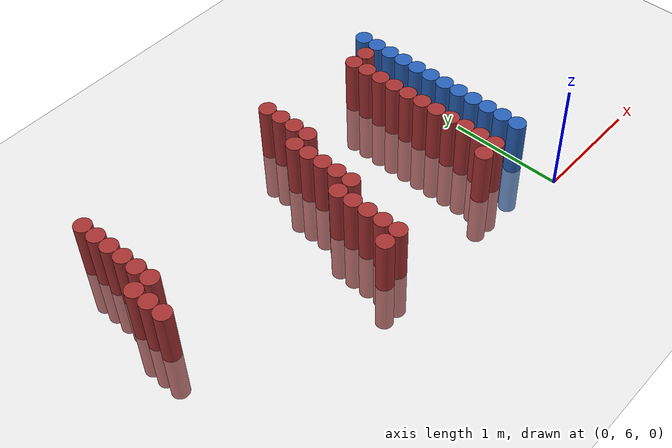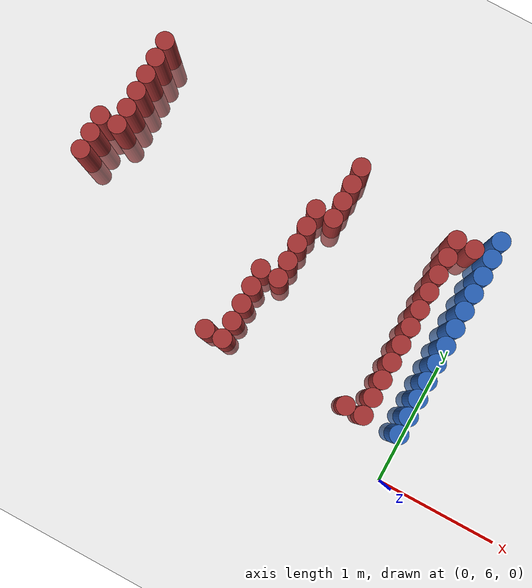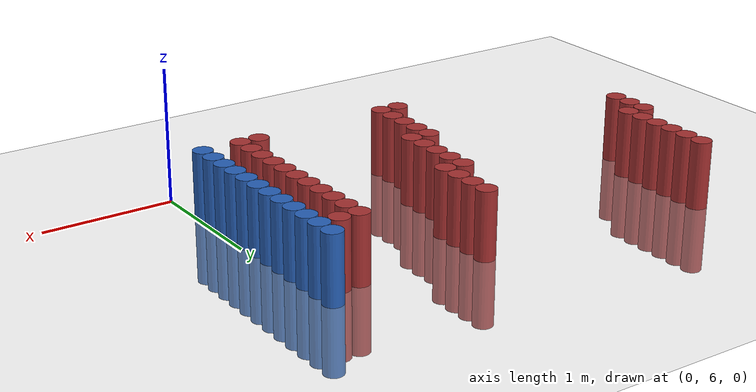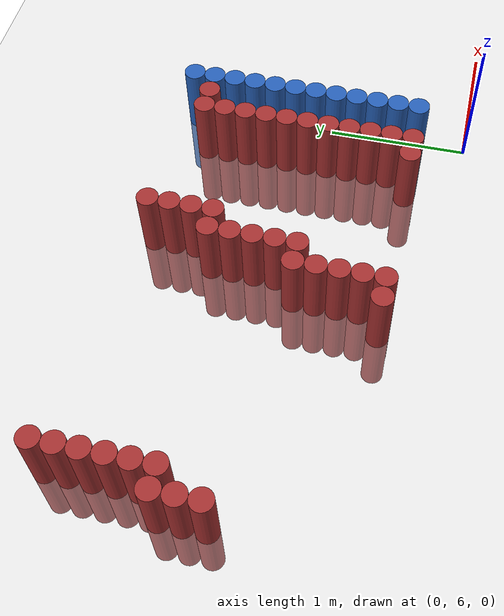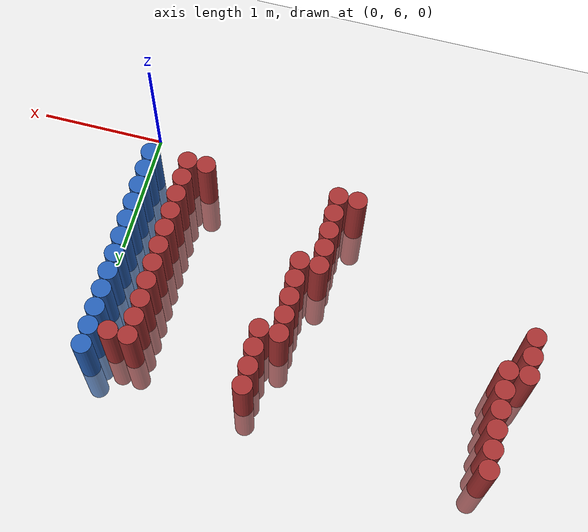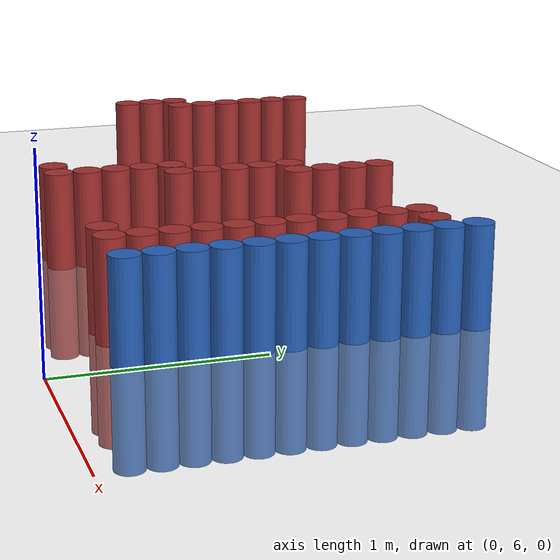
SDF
<sdf version="1.6">
 <world name="default">
  <model name="ground_plane">
   <static>1</static>
   <link name="link">
    <collision name="collision">
     <geometry><plane><normal>0 0 1</normal><size>100 100</size></plane></geometry>
     <surface><friction><ode><mu>100</mu><mu2>50</mu2></ode></friction></surface>
    </collision>
    <visual name="visual">
     <cast_shadows>0</cast_shadows>
     <geometry><plane><normal>0 0 1</normal><size>100 100</size></plane></geometry>
     <material>
      <script><uri>file://media/materials/scripts/gazebo.material</uri><name>Gazebo/Grey</name></script>
     </material>
    </visual>
   </link>
  </model>
  <model name="unit_cylinder_165">
   <static>1</static>
   <pose>-3.225000 7.125000 0.000000 0.000000 0.000000 0.000000</pose>
   <link name="link">
    <inertial>
     <mass>1</mass>
     <inertia><ixx>0.145833</ixx><ixy>0</ixy><ixz>0</ixz><iyy>0.145833</iyy><iyz>0</iyz><izz>0.125</izz></inertia>
    </inertial>
    <collision name="collision">
     <geometry><cylinder><radius>0.075000</radius><length>1</length></cylinder></geometry>
    </collision>
    <visual name="visual">
     <geometry><cylinder><radius>0.075000</radius><length>1</length></cylinder></geometry>
     <material>
      <ambient>0.648000 0.192000 0.192000 1</ambient>
      <diffuse>0.648000 0.192000 0.192000 1</diffuse>
     </material>
     <material>
      <script><name>Gazebo/Grey</name><uri>file://media/materials/scripts/gazebo.material</uri></script>
     </material>
    </visual>
   </link>
  </model>
  <model name="unit_cylinder_166">
   <static>1</static>
   <pose>-3.225000 7.275000 0.000000 0.000000 0.000000 0.000000</pose>
   <link name="link">
    <inertial>
     <mass>1</mass>
     <inertia><ixx>0.145833</ixx><ixy>0</ixy><ixz>0</ixz><iyy>0.145833</iyy><iyz>0</iyz><izz>0.125</izz></inertia>
    </inertial>
    <collision name="collision">
     <geometry><cylinder><radius>0.075000</radius><length>1</length></cylinder></geometry>
    </collision>
    <visual name="visual">
     <geometry><cylinder><radius>0.075000</radius><length>1</length></cylinder></geometry>
     <material>
      <ambient>0.648000 0.192000 0.192000 1</ambient>
      <diffuse>0.648000 0.192000 0.192000 1</diffuse>
     </material>
     <material>
      <script><name>Gazebo/Grey</name><uri>file://media/materials/scripts/gazebo.material</uri></script>
     </material>
    </visual>
   </link>
  </model>
  <model name="unit_cylinder_167">
   <static>1</static>
   <pose>-3.225000 7.425000 0.000000 0.000000 0.000000 0.000000</pose>
   <link name="link">
    <inertial>
     <mass>1</mass>
     <inertia><ixx>0.145833</ixx><ixy>0</ixy><ixz>0</ixz><iyy>0.145833</iyy><iyz>0</iyz><izz>0.125</izz></inertia>
    </inertial>
    <collision name="collision">
     <geometry><cylinder><radius>0.075000</radius><length>1</length></cylinder></geometry>
    </collision>
    <visual name="visual">
     <geometry><cylinder><radius>0.075000</radius><length>1</length></cylinder></geometry>
     <material>
      <ambient>0.648000 0.192000 0.192000 1</ambient>
      <diffuse>0.648000 0.192000 0.192000 1</diffuse>
     </material>
     <material>
      <script><name>Gazebo/Grey</name><uri>file://media/materials/scripts/gazebo.material</uri></script>
     </material>
    </visual>
   </link>
  </model>
  <model name="unit_cylinder_169">
   <static>1</static>
   <pose>-3.075000 7.425000 0.000000 0.000000 0.000000 0.000000</pose>
   <link name="link">
    <inertial>
     <mass>1</mass>
     <inertia><ixx>0.145833</ixx><ixy>0</ixy><ixz>0</ixz><iyy>0.145833</iyy><iyz>0</iyz><izz>0.125</izz></inertia>
    </inertial>
    <collision name="collision">
     <geometry><cylinder><radius>0.075000</radius><length>1</length></cylinder></geometry>
    </collision>
    <visual name="visual">
     <geometry><cylinder><radius>0.075000</radius><length>1</length></cylinder></geometry>
     <material>
      <ambient>0.648000 0.192000 0.192000 1</ambient>
      <diffuse>0.648000 0.192000 0.192000 1</diffuse>
     </material>
     <material>
      <script><name>Gazebo/Grey</name><uri>file://media/materials/scripts/gazebo.material</uri></script>
     </material>
    </visual>
   </link>
  </model>
  <model name="unit_cylinder_170">
   <static>1</static>
   <pose>-3.075000 7.575000 0.000000 0.000000 0.000000 0.000000</pose>
   <link name="link">
    <inertial>
     <mass>1</mass>
     <inertia><ixx>0.145833</ixx><ixy>0</ixy><ixz>0</ixz><iyy>0.145833</iyy><iyz>0</iyz><izz>0.125</izz></inertia>
    </inertial>
    <collision name="collision">
     <geometry><cylinder><radius>0.075000</radius><length>1</length></cylinder></geometry>
    </collision>
    <visual name="visual">
     <geometry><cylinder><radius>0.075000</radius><length>1</length></cylinder></geometry>
     <material>
      <ambient>0.648000 0.192000 0.192000 1</ambient>
      <diffuse>0.648000 0.192000 0.192000 1</diffuse>
     </material>
     <material>
      <script><name>Gazebo/Grey</name><uri>file://media/materials/scripts/gazebo.material</uri></script>
     </material>
    </visual>
   </link>
  </model>
  <model name="unit_cylinder_171">
   <static>1</static>
   <pose>-3.075000 7.725000 0.000000 0.000000 0.000000 0.000000</pose>
   <link name="link">
    <inertial>
     <mass>1</mass>
     <inertia><ixx>0.145833</ixx><ixy>0</ixy><ixz>0</ixz><iyy>0.145833</iyy><iyz>0</iyz><izz>0.125</izz></inertia>
    </inertial>
    <collision name="collision">
     <geometry><cylinder><radius>0.075000</radius><length>1</length></cylinder></geometry>
    </collision>
    <visual name="visual">
     <geometry><cylinder><radius>0.075000</radius><length>1</length></cylinder></geometry>
     <material>
      <ambient>0.648000 0.192000 0.192000 1</ambient>
      <diffuse>0.648000 0.192000 0.192000 1</diffuse>
     </material>
     <material>
      <script><name>Gazebo/Grey</name><uri>file://media/materials/scripts/gazebo.material</uri></script>
     </material>
    </visual>
   </link>
  </model>
  <model name="unit_cylinder_172">
   <static>1</static>
   <pose>-3.075000 7.875000 0.000000 0.000000 0.000000 0.000000</pose>
   <link name="link">
    <inertial>
     <mass>1</mass>
     <inertia><ixx>0.145833</ixx><ixy>0</ixy><ixz>0</ixz><iyy>0.145833</iyy><iyz>0</iyz><izz>0.125</izz></inertia>
    </inertial>
    <collision name="collision">
     <geometry><cylinder><radius>0.075000</radius><length>1</length></cylinder></geometry>
    </collision>
    <visual name="visual">
     <geometry><cylinder><radius>0.075000</radius><length>1</length></cylinder></geometry>
     <material>
      <ambient>0.648000 0.192000 0.192000 1</ambient>
      <diffuse>0.648000 0.192000 0.192000 1</diffuse>
     </material>
     <material>
      <script><name>Gazebo/Grey</name><uri>file://media/materials/scripts/gazebo.material</uri></script>
     </material>
    </visual>
   </link>
  </model>
  <model name="unit_cylinder_173">
   <static>1</static>
   <pose>-3.075000 8.025000 0.000000 0.000000 0.000000 0.000000</pose>
   <link name="link">
    <inertial>
     <mass>1</mass>
     <inertia><ixx>0.145833</ixx><ixy>0</ixy><ixz>0</ixz><iyy>0.145833</iyy><iyz>0</iyz><izz>0.125</izz></inertia>
    </inertial>
    <collision name="collision">
     <geometry><cylinder><radius>0.075000</radius><length>1</length></cylinder></geometry>
    </collision>
    <visual name="visual">
     <geometry><cylinder><radius>0.075000</radius><length>1</length></cylinder></geometry>
     <material>
      <ambient>0.648000 0.192000 0.192000 1</ambient>
      <diffuse>0.648000 0.192000 0.192000 1</diffuse>
     </material>
     <material>
      <script><name>Gazebo/Grey</name><uri>file://media/materials/scripts/gazebo.material</uri></script>
     </material>
    </visual>
   </link>
  </model>
  <model name="unit_cylinder_174">
   <static>1</static>
   <pose>-3.075000 8.175000 0.000000 0.000000 0.000000 0.000000</pose>
   <link name="link">
    <inertial>
     <mass>1</mass>
     <inertia><ixx>0.145833</ixx><ixy>0</ixy><ixz>0</ixz><iyy>0.145833</iyy><iyz>0</iyz><izz>0.125</izz></inertia>
    </inertial>
    <collision name="collision">
     <geometry><cylinder><radius>0.075000</radius><length>1</length></cylinder></geometry>
    </collision>
    <visual name="visual">
     <geometry><cylinder><radius>0.075000</radius><length>1</length></cylinder></geometry>
     <material>
      <ambient>0.648000 0.192000 0.192000 1</ambient>
      <diffuse>0.648000 0.192000 0.192000 1</diffuse>
     </material>
     <material>
      <script><name>Gazebo/Grey</name><uri>file://media/materials/scripts/gazebo.material</uri></script>
     </material>
    </visual>
   </link>
  </model>
  <model name="unit_cylinder_199">
   <static>1</static>
   <pose>-1.725000 6.375000 0.000000 0.000000 0.000000 0.000000</pose>
   <link name="link">
    <inertial>
     <mass>1</mass>
     <inertia><ixx>0.145833</ixx><ixy>0</ixy><ixz>0</ixz><iyy>0.145833</iyy><iyz>0</iyz><izz>0.125</izz></inertia>
    </inertial>
    <collision name="collision">
     <geometry><cylinder><radius>0.075000</radius><length>1</length></cylinder></geometry>
    </collision>
    <visual name="visual">
     <geometry><cylinder><radius>0.075000</radius><length>1</length></cylinder></geometry>
     <material>
      <ambient>0.648000 0.192000 0.192000 1</ambient>
      <diffuse>0.648000 0.192000 0.192000 1</diffuse>
     </material>
     <material>
      <script><name>Gazebo/Grey</name><uri>file://media/materials/scripts/gazebo.material</uri></script>
     </material>
    </visual>
   </link>
  </model>
  <model name="unit_cylinder_206">
   <static>1</static>
   <pose>-1.575000 6.375000 0.000000 0.000000 0.000000 0.000000</pose>
   <link name="link">
    <inertial>
     <mass>1</mass>
     <inertia><ixx>0.145833</ixx><ixy>0</ixy><ixz>0</ixz><iyy>0.145833</iyy><iyz>0</iyz><izz>0.125</izz></inertia>
    </inertial>
    <collision name="collision">
     <geometry><cylinder><radius>0.075000</radius><length>1</length></cylinder></geometry>
    </collision>
    <visual name="visual">
     <geometry><cylinder><radius>0.075000</radius><length>1</length></cylinder></geometry>
     <material>
      <ambient>0.648000 0.192000 0.192000 1</ambient>
      <diffuse>0.648000 0.192000 0.192000 1</diffuse>
     </material>
     <material>
      <script><name>Gazebo/Grey</name><uri>file://media/materials/scripts/gazebo.material</uri></script>
     </material>
    </visual>
   </link>
  </model>
  <model name="unit_cylinder_207">
   <static>1</static>
   <pose>-1.575000 6.525000 0.000000 0.000000 0.000000 0.000000</pose>
   <link name="link">
    <inertial>
     <mass>1</mass>
     <inertia><ixx>0.145833</ixx><ixy>0</ixy><ixz>0</ixz><iyy>0.145833</iyy><iyz>0</iyz><izz>0.125</izz></inertia>
    </inertial>
    <collision name="collision">
     <geometry><cylinder><radius>0.075000</radius><length>1</length></cylinder></geometry>
    </collision>
    <visual name="visual">
     <geometry><cylinder><radius>0.075000</radius><length>1</length></cylinder></geometry>
     <material>
      <ambient>0.648000 0.192000 0.192000 1</ambient>
      <diffuse>0.648000 0.192000 0.192000 1</diffuse>
     </material>
     <material>
      <script><name>Gazebo/Grey</name><uri>file://media/materials/scripts/gazebo.material</uri></script>
     </material>
    </visual>
   </link>
  </model>
  <model name="unit_cylinder_208">
   <static>1</static>
   <pose>-1.575000 6.675000 0.000000 0.000000 0.000000 0.000000</pose>
   <link name="link">
    <inertial>
     <mass>1</mass>
     <inertia><ixx>0.145833</ixx><ixy>0</ixy><ixz>0</ixz><iyy>0.145833</iyy><iyz>0</iyz><izz>0.125</izz></inertia>
    </inertial>
    <collision name="collision">
     <geometry><cylinder><radius>0.075000</radius><length>1</length></cylinder></geometry>
    </collision>
    <visual name="visual">
     <geometry><cylinder><radius>0.075000</radius><length>1</length></cylinder></geometry>
     <material>
      <ambient>0.648000 0.192000 0.192000 1</ambient>
      <diffuse>0.648000 0.192000 0.192000 1</diffuse>
     </material>
     <material>
      <script><name>Gazebo/Grey</name><uri>file://media/materials/scripts/gazebo.material</uri></script>
     </material>
    </visual>
   </link>
  </model>
  <model name="unit_cylinder_209">
   <static>1</static>
   <pose>-1.575000 6.825000 0.000000 0.000000 0.000000 0.000000</pose>
   <link name="link">
    <inertial>
     <mass>1</mass>
     <inertia><ixx>0.145833</ixx><ixy>0</ixy><ixz>0</ixz><iyy>0.145833</iyy><iyz>0</iyz><izz>0.125</izz></inertia>
    </inertial>
    <collision name="collision">
     <geometry><cylinder><radius>0.075000</radius><length>1</length></cylinder></geometry>
    </collision>
    <visual name="visual">
     <geometry><cylinder><radius>0.075000</radius><length>1</length></cylinder></geometry>
     <material>
      <ambient>0.648000 0.192000 0.192000 1</ambient>
      <diffuse>0.648000 0.192000 0.192000 1</diffuse>
     </material>
     <material>
      <script><name>Gazebo/Grey</name><uri>file://media/materials/scripts/gazebo.material</uri></script>
     </material>
    </visual>
   </link>
  </model>
  <model name="unit_cylinder_210">
   <static>1</static>
   <pose>-1.575000 6.975000 0.000000 0.000000 0.000000 0.000000</pose>
   <link name="link">
    <inertial>
     <mass>1</mass>
     <inertia><ixx>0.145833</ixx><ixy>0</ixy><ixz>0</ixz><iyy>0.145833</iyy><iyz>0</iyz><izz>0.125</izz></inertia>
    </inertial>
    <collision name="collision">
     <geometry><cylinder><radius>0.075000</radius><length>1</length></cylinder></geometry>
    </collision>
    <visual name="visual">
     <geometry><cylinder><radius>0.075000</radius><length>1</length></cylinder></geometry>
     <material>
      <ambient>0.648000 0.192000 0.192000 1</ambient>
      <diffuse>0.648000 0.192000 0.192000 1</diffuse>
     </material>
     <material>
      <script><name>Gazebo/Grey</name><uri>file://media/materials/scripts/gazebo.material</uri></script>
     </material>
    </visual>
   </link>
  </model>
  <model name="unit_cylinder_215">
   <static>1</static>
   <pose>-1.425000 6.975000 0.000000 0.000000 0.000000 0.000000</pose>
   <link name="link">
    <inertial>
     <mass>1</mass>
     <inertia><ixx>0.145833</ixx><ixy>0</ixy><ixz>0</ixz><iyy>0.145833</iyy><iyz>0</iyz><izz>0.125</izz></inertia>
    </inertial>
    <collision name="collision">
     <geometry><cylinder><radius>0.075000</radius><length>1</length></cylinder></geometry>
    </collision>
    <visual name="visual">
     <geometry><cylinder><radius>0.075000</radius><length>1</length></cylinder></geometry>
     <material>
      <ambient>0.648000 0.192000 0.192000 1</ambient>
      <diffuse>0.648000 0.192000 0.192000 1</diffuse>
     </material>
     <material>
      <script><name>Gazebo/Grey</name><uri>file://media/materials/scripts/gazebo.material</uri></script>
     </material>
    </visual>
   </link>
  </model>
  <model name="unit_cylinder_216">
   <static>1</static>
   <pose>-1.425000 7.125000 0.000000 0.000000 0.000000 0.000000</pose>
   <link name="link">
    <inertial>
     <mass>1</mass>
     <inertia><ixx>0.145833</ixx><ixy>0</ixy><ixz>0</ixz><iyy>0.145833</iyy><iyz>0</iyz><izz>0.125</izz></inertia>
    </inertial>
    <collision name="collision">
     <geometry><cylinder><radius>0.075000</radius><length>1</length></cylinder></geometry>
    </collision>
    <visual name="visual">
     <geometry><cylinder><radius>0.075000</radius><length>1</length></cylinder></geometry>
     <material>
      <ambient>0.648000 0.192000 0.192000 1</ambient>
      <diffuse>0.648000 0.192000 0.192000 1</diffuse>
     </material>
     <material>
      <script><name>Gazebo/Grey</name><uri>file://media/materials/scripts/gazebo.material</uri></script>
     </material>
    </visual>
   </link>
  </model>
  <model name="unit_cylinder_217">
   <static>1</static>
   <pose>-1.425000 7.275000 0.000000 0.000000 0.000000 0.000000</pose>
   <link name="link">
    <inertial>
     <mass>1</mass>
     <inertia><ixx>0.145833</ixx><ixy>0</ixy><ixz>0</ixz><iyy>0.145833</iyy><iyz>0</iyz><izz>0.125</izz></inertia>
    </inertial>
    <collision name="collision">
     <geometry><cylinder><radius>0.075000</radius><length>1</length></cylinder></geometry>
    </collision>
    <visual name="visual">
     <geometry><cylinder><radius>0.075000</radius><length>1</length></cylinder></geometry>
     <material>
      <ambient>0.648000 0.192000 0.192000 1</ambient>
      <diffuse>0.648000 0.192000 0.192000 1</diffuse>
     </material>
     <material>
      <script><name>Gazebo/Grey</name><uri>file://media/materials/scripts/gazebo.material</uri></script>
     </material>
    </visual>
   </link>
  </model>
  <model name="unit_cylinder_218">
   <static>1</static>
   <pose>-1.425000 7.425000 0.000000 0.000000 0.000000 0.000000</pose>
   <link name="link">
    <inertial>
     <mass>1</mass>
     <inertia><ixx>0.145833</ixx><ixy>0</ixy><ixz>0</ixz><iyy>0.145833</iyy><iyz>0</iyz><izz>0.125</izz></inertia>
    </inertial>
    <collision name="collision">
     <geometry><cylinder><radius>0.075000</radius><length>1</length></cylinder></geometry>
    </collision>
    <visual name="visual">
     <geometry><cylinder><radius>0.075000</radius><length>1</length></cylinder></geometry>
     <material>
      <ambient>0.648000 0.192000 0.192000 1</ambient>
      <diffuse>0.648000 0.192000 0.192000 1</diffuse>
     </material>
     <material>
      <script><name>Gazebo/Grey</name><uri>file://media/materials/scripts/gazebo.material</uri></script>
     </material>
    </visual>
   </link>
  </model>
  <model name="unit_cylinder_219">
   <static>1</static>
   <pose>-1.425000 7.575000 0.000000 0.000000 0.000000 0.000000</pose>
   <link name="link">
    <inertial>
     <mass>1</mass>
     <inertia><ixx>0.145833</ixx><ixy>0</ixy><ixz>0</ixz><iyy>0.145833</iyy><iyz>0</iyz><izz>0.125</izz></inertia>
    </inertial>
    <collision name="collision">
     <geometry><cylinder><radius>0.075000</radius><length>1</length></cylinder></geometry>
    </collision>
    <visual name="visual">
     <geometry><cylinder><radius>0.075000</radius><length>1</length></cylinder></geometry>
     <material>
      <ambient>0.648000 0.192000 0.192000 1</ambient>
      <diffuse>0.648000 0.192000 0.192000 1</diffuse>
     </material>
     <material>
      <script><name>Gazebo/Grey</name><uri>file://media/materials/scripts/gazebo.material</uri></script>
     </material>
    </visual>
   </link>
  </model>
  <model name="unit_cylinder_223">
   <static>1</static>
   <pose>-1.275000 7.575000 0.000000 0.000000 0.000000 0.000000</pose>
   <link name="link">
    <inertial>
     <mass>1</mass>
     <inertia><ixx>0.145833</ixx><ixy>0</ixy><ixz>0</ixz><iyy>0.145833</iyy><iyz>0</iyz><izz>0.125</izz></inertia>
    </inertial>
    <collision name="collision">
     <geometry><cylinder><radius>0.075000</radius><length>1</length></cylinder></geometry>
    </collision>
    <visual name="visual">
     <geometry><cylinder><radius>0.075000</radius><length>1</length></cylinder></geometry>
     <material>
      <ambient>0.648000 0.192000 0.192000 1</ambient>
      <diffuse>0.648000 0.192000 0.192000 1</diffuse>
     </material>
     <material>
      <script><name>Gazebo/Grey</name><uri>file://media/materials/scripts/gazebo.material</uri></script>
     </material>
    </visual>
   </link>
  </model>
  <model name="unit_cylinder_224">
   <static>1</static>
   <pose>-1.275000 7.725000 0.000000 0.000000 0.000000 0.000000</pose>
   <link name="link">
    <inertial>
     <mass>1</mass>
     <inertia><ixx>0.145833</ixx><ixy>0</ixy><ixz>0</ixz><iyy>0.145833</iyy><iyz>0</iyz><izz>0.125</izz></inertia>
    </inertial>
    <collision name="collision">
     <geometry><cylinder><radius>0.075000</radius><length>1</length></cylinder></geometry>
    </collision>
    <visual name="visual">
     <geometry><cylinder><radius>0.075000</radius><length>1</length></cylinder></geometry>
     <material>
      <ambient>0.648000 0.192000 0.192000 1</ambient>
      <diffuse>0.648000 0.192000 0.192000 1</diffuse>
     </material>
     <material>
      <script><name>Gazebo/Grey</name><uri>file://media/materials/scripts/gazebo.material</uri></script>
     </material>
    </visual>
   </link>
  </model>
  <model name="unit_cylinder_225">
   <static>1</static>
   <pose>-1.275000 7.875000 0.000000 0.000000 0.000000 0.000000</pose>
   <link name="link">
    <inertial>
     <mass>1</mass>
     <inertia><ixx>0.145833</ixx><ixy>0</ixy><ixz>0</ixz><iyy>0.145833</iyy><iyz>0</iyz><izz>0.125</izz></inertia>
    </inertial>
    <collision name="collision">
     <geometry><cylinder><radius>0.075000</radius><length>1</length></cylinder></geometry>
    </collision>
    <visual name="visual">
     <geometry><cylinder><radius>0.075000</radius><length>1</length></cylinder></geometry>
     <material>
      <ambient>0.648000 0.192000 0.192000 1</ambient>
      <diffuse>0.648000 0.192000 0.192000 1</diffuse>
     </material>
     <material>
      <script><name>Gazebo/Grey</name><uri>file://media/materials/scripts/gazebo.material</uri></script>
     </material>
    </visual>
   </link>
  </model>
  <model name="unit_cylinder_226">
   <static>1</static>
   <pose>-1.275000 8.025000 0.000000 0.000000 0.000000 0.000000</pose>
   <link name="link">
    <inertial>
     <mass>1</mass>
     <inertia><ixx>0.145833</ixx><ixy>0</ixy><ixz>0</ixz><iyy>0.145833</iyy><iyz>0</iyz><izz>0.125</izz></inertia>
    </inertial>
    <collision name="collision">
     <geometry><cylinder><radius>0.075000</radius><length>1</length></cylinder></geometry>
    </collision>
    <visual name="visual">
     <geometry><cylinder><radius>0.075000</radius><length>1</length></cylinder></geometry>
     <material>
      <ambient>0.648000 0.192000 0.192000 1</ambient>
      <diffuse>0.648000 0.192000 0.192000 1</diffuse>
     </material>
     <material>
      <script><name>Gazebo/Grey</name><uri>file://media/materials/scripts/gazebo.material</uri></script>
     </material>
    </visual>
   </link>
  </model>
  <model name="unit_cylinder_245">
   <static>1</static>
   <pose>-0.525000 6.375000 0.000000 0.000000 0.000000 0.000000</pose>
   <link name="link">
    <inertial>
     <mass>1</mass>
     <inertia><ixx>0.145833</ixx><ixy>0</ixy><ixz>0</ixz><iyy>0.145833</iyy><iyz>0</iyz><izz>0.125</izz></inertia>
    </inertial>
    <collision name="collision">
     <geometry><cylinder><radius>0.075000</radius><length>1</length></cylinder></geometry>
    </collision>
    <visual name="visual">
     <geometry><cylinder><radius>0.075000</radius><length>1</length></cylinder></geometry>
     <material>
      <ambient>0.648000 0.192000 0.192000 1</ambient>
      <diffuse>0.648000 0.192000 0.192000 1</diffuse>
     </material>
     <material>
      <script><name>Gazebo/Grey</name><uri>file://media/materials/scripts/gazebo.material</uri></script>
     </material>
    </visual>
   </link>
  </model>
  <model name="unit_cylinder_247">
   <static>1</static>
   <pose>-0.375000 6.375000 0.000000 0.000000 0.000000 0.000000</pose>
   <link name="link">
    <inertial>
     <mass>1</mass>
     <inertia><ixx>0.145833</ixx><ixy>0</ixy><ixz>0</ixz><iyy>0.145833</iyy><iyz>0</iyz><izz>0.125</izz></inertia>
    </inertial>
    <collision name="collision">
     <geometry><cylinder><radius>0.075000</radius><length>1</length></cylinder></geometry>
    </collision>
    <visual name="visual">
     <geometry><cylinder><radius>0.075000</radius><length>1</length></cylinder></geometry>
     <material>
      <ambient>0.648000 0.192000 0.192000 1</ambient>
      <diffuse>0.648000 0.192000 0.192000 1</diffuse>
     </material>
     <material>
      <script><name>Gazebo/Grey</name><uri>file://media/materials/scripts/gazebo.material</uri></script>
     </material>
    </visual>
   </link>
  </model>
  <model name="unit_cylinder_248">
   <static>1</static>
   <pose>-0.375000 6.525000 0.000000 0.000000 0.000000 0.000000</pose>
   <link name="link">
    <inertial>
     <mass>1</mass>
     <inertia><ixx>0.145833</ixx><ixy>0</ixy><ixz>0</ixz><iyy>0.145833</iyy><iyz>0</iyz><izz>0.125</izz></inertia>
    </inertial>
    <collision name="collision">
     <geometry><cylinder><radius>0.075000</radius><length>1</length></cylinder></geometry>
    </collision>
    <visual name="visual">
     <geometry><cylinder><radius>0.075000</radius><length>1</length></cylinder></geometry>
     <material>
      <ambient>0.648000 0.192000 0.192000 1</ambient>
      <diffuse>0.648000 0.192000 0.192000 1</diffuse>
     </material>
     <material>
      <script><name>Gazebo/Grey</name><uri>file://media/materials/scripts/gazebo.material</uri></script>
     </material>
    </visual>
   </link>
  </model>
  <model name="unit_cylinder_249">
   <static>1</static>
   <pose>-0.375000 6.675000 0.000000 0.000000 0.000000 0.000000</pose>
   <link name="link">
    <inertial>
     <mass>1</mass>
     <inertia><ixx>0.145833</ixx><ixy>0</ixy><ixz>0</ixz><iyy>0.145833</iyy><iyz>0</iyz><izz>0.125</izz></inertia>
    </inertial>
    <collision name="collision">
     <geometry><cylinder><radius>0.075000</radius><length>1</length></cylinder></geometry>
    </collision>
    <visual name="visual">
     <geometry><cylinder><radius>0.075000</radius><length>1</length></cylinder></geometry>
     <material>
      <ambient>0.648000 0.192000 0.192000 1</ambient>
      <diffuse>0.648000 0.192000 0.192000 1</diffuse>
     </material>
     <material>
      <script><name>Gazebo/Grey</name><uri>file://media/materials/scripts/gazebo.material</uri></script>
     </material>
    </visual>
   </link>
  </model>
  <model name="unit_cylinder_250">
   <static>1</static>
   <pose>-0.375000 6.825000 0.000000 0.000000 0.000000 0.000000</pose>
   <link name="link">
    <inertial>
     <mass>1</mass>
     <inertia><ixx>0.145833</ixx><ixy>0</ixy><ixz>0</ixz><iyy>0.145833</iyy><iyz>0</iyz><izz>0.125</izz></inertia>
    </inertial>
    <collision name="collision">
     <geometry><cylinder><radius>0.075000</radius><length>1</length></cylinder></geometry>
    </collision>
    <visual name="visual">
     <geometry><cylinder><radius>0.075000</radius><length>1</length></cylinder></geometry>
     <material>
      <ambient>0.648000 0.192000 0.192000 1</ambient>
      <diffuse>0.648000 0.192000 0.192000 1</diffuse>
     </material>
     <material>
      <script><name>Gazebo/Grey</name><uri>file://media/materials/scripts/gazebo.material</uri></script>
     </material>
    </visual>
   </link>
  </model>
  <model name="unit_cylinder_251">
   <static>1</static>
   <pose>-0.375000 6.975000 0.000000 0.000000 0.000000 0.000000</pose>
   <link name="link">
    <inertial>
     <mass>1</mass>
     <inertia><ixx>0.145833</ixx><ixy>0</ixy><ixz>0</ixz><iyy>0.145833</iyy><iyz>0</iyz><izz>0.125</izz></inertia>
    </inertial>
    <collision name="collision">
     <geometry><cylinder><radius>0.075000</radius><length>1</length></cylinder></geometry>
    </collision>
    <visual name="visual">
     <geometry><cylinder><radius>0.075000</radius><length>1</length></cylinder></geometry>
     <material>
      <ambient>0.648000 0.192000 0.192000 1</ambient>
      <diffuse>0.648000 0.192000 0.192000 1</diffuse>
     </material>
     <material>
      <script><name>Gazebo/Grey</name><uri>file://media/materials/scripts/gazebo.material</uri></script>
     </material>
    </visual>
   </link>
  </model>
  <model name="unit_cylinder_252">
   <static>1</static>
   <pose>-0.375000 7.125000 0.000000 0.000000 0.000000 0.000000</pose>
   <link name="link">
    <inertial>
     <mass>1</mass>
     <inertia><ixx>0.145833</ixx><ixy>0</ixy><ixz>0</ixz><iyy>0.145833</iyy><iyz>0</iyz><izz>0.125</izz></inertia>
    </inertial>
    <collision name="collision">
     <geometry><cylinder><radius>0.075000</radius><length>1</length></cylinder></geometry>
    </collision>
    <visual name="visual">
     <geometry><cylinder><radius>0.075000</radius><length>1</length></cylinder></geometry>
     <material>
      <ambient>0.648000 0.192000 0.192000 1</ambient>
      <diffuse>0.648000 0.192000 0.192000 1</diffuse>
     </material>
     <material>
      <script><name>Gazebo/Grey</name><uri>file://media/materials/scripts/gazebo.material</uri></script>
     </material>
    </visual>
   </link>
  </model>
  <model name="unit_cylinder_253">
   <static>1</static>
   <pose>-0.375000 7.275000 0.000000 0.000000 0.000000 0.000000</pose>
   <link name="link">
    <inertial>
     <mass>1</mass>
     <inertia><ixx>0.145833</ixx><ixy>0</ixy><ixz>0</ixz><iyy>0.145833</iyy><iyz>0</iyz><izz>0.125</izz></inertia>
    </inertial>
    <collision name="collision">
     <geometry><cylinder><radius>0.075000</radius><length>1</length></cylinder></geometry>
    </collision>
    <visual name="visual">
     <geometry><cylinder><radius>0.075000</radius><length>1</length></cylinder></geometry>
     <material>
      <ambient>0.648000 0.192000 0.192000 1</ambient>
      <diffuse>0.648000 0.192000 0.192000 1</diffuse>
     </material>
     <material>
      <script><name>Gazebo/Grey</name><uri>file://media/materials/scripts/gazebo.material</uri></script>
     </material>
    </visual>
   </link>
  </model>
  <model name="unit_cylinder_254">
   <static>1</static>
   <pose>-0.375000 7.425000 0.000000 0.000000 0.000000 0.000000</pose>
   <link name="link">
    <inertial>
     <mass>1</mass>
     <inertia><ixx>0.145833</ixx><ixy>0</ixy><ixz>0</ixz><iyy>0.145833</iyy><iyz>0</iyz><izz>0.125</izz></inertia>
    </inertial>
    <collision name="collision">
     <geometry><cylinder><radius>0.075000</radius><length>1</length></cylinder></geometry>
    </collision>
    <visual name="visual">
     <geometry><cylinder><radius>0.075000</radius><length>1</length></cylinder></geometry>
     <material>
      <ambient>0.648000 0.192000 0.192000 1</ambient>
      <diffuse>0.648000 0.192000 0.192000 1</diffuse>
     </material>
     <material>
      <script><name>Gazebo/Grey</name><uri>file://media/materials/scripts/gazebo.material</uri></script>
     </material>
    </visual>
   </link>
  </model>
  <model name="unit_cylinder_255">
   <static>1</static>
   <pose>-0.375000 7.575000 0.000000 0.000000 0.000000 0.000000</pose>
   <link name="link">
    <inertial>
     <mass>1</mass>
     <inertia><ixx>0.145833</ixx><ixy>0</ixy><ixz>0</ixz><iyy>0.145833</iyy><iyz>0</iyz><izz>0.125</izz></inertia>
    </inertial>
    <collision name="collision">
     <geometry><cylinder><radius>0.075000</radius><length>1</length></cylinder></geometry>
    </collision>
    <visual name="visual">
     <geometry><cylinder><radius>0.075000</radius><length>1</length></cylinder></geometry>
     <material>
      <ambient>0.648000 0.192000 0.192000 1</ambient>
      <diffuse>0.648000 0.192000 0.192000 1</diffuse>
     </material>
     <material>
      <script><name>Gazebo/Grey</name><uri>file://media/materials/scripts/gazebo.material</uri></script>
     </material>
    </visual>
   </link>
  </model>
  <model name="unit_cylinder_256">
   <static>1</static>
   <pose>-0.375000 7.725000 0.000000 0.000000 0.000000 0.000000</pose>
   <link name="link">
    <inertial>
     <mass>1</mass>
     <inertia><ixx>0.145833</ixx><ixy>0</ixy><ixz>0</ixz><iyy>0.145833</iyy><iyz>0</iyz><izz>0.125</izz></inertia>
    </inertial>
    <collision name="collision">
     <geometry><cylinder><radius>0.075000</radius><length>1</length></cylinder></geometry>
    </collision>
    <visual name="visual">
     <geometry><cylinder><radius>0.075000</radius><length>1</length></cylinder></geometry>
     <material>
      <ambient>0.648000 0.192000 0.192000 1</ambient>
      <diffuse>0.648000 0.192000 0.192000 1</diffuse>
     </material>
     <material>
      <script><name>Gazebo/Grey</name><uri>file://media/materials/scripts/gazebo.material</uri></script>
     </material>
    </visual>
   </link>
  </model>
  <model name="unit_cylinder_257">
   <static>1</static>
   <pose>-0.375000 7.875000 0.000000 0.000000 0.000000 0.000000</pose>
   <link name="link">
    <inertial>
     <mass>1</mass>
     <inertia><ixx>0.145833</ixx><ixy>0</ixy><ixz>0</ixz><iyy>0.145833</iyy><iyz>0</iyz><izz>0.125</izz></inertia>
    </inertial>
    <collision name="collision">
     <geometry><cylinder><radius>0.075000</radius><length>1</length></cylinder></geometry>
    </collision>
    <visual name="visual">
     <geometry><cylinder><radius>0.075000</radius><length>1</length></cylinder></geometry>
     <material>
      <ambient>0.648000 0.192000 0.192000 1</ambient>
      <diffuse>0.648000 0.192000 0.192000 1</diffuse>
     </material>
     <material>
      <script><name>Gazebo/Grey</name><uri>file://media/materials/scripts/gazebo.material</uri></script>
     </material>
    </visual>
   </link>
  </model>
  <model name="unit_cylinder_263">
   <static>1</static>
   <pose>-0.225000 7.875000 0.000000 0.000000 0.000000 0.000000</pose>
   <link name="link">
    <inertial>
     <mass>1</mass>
     <inertia><ixx>0.145833</ixx><ixy>0</ixy><ixz>0</ixz><iyy>0.145833</iyy><iyz>0</iyz><izz>0.125</izz></inertia>
    </inertial>
    <collision name="collision">
     <geometry><cylinder><radius>0.075000</radius><length>1</length></cylinder></geometry>
    </collision>
    <visual name="visual">
     <geometry><cylinder><radius>0.075000</radius><length>1</length></cylinder></geometry>
     <material>
      <ambient>0.648000 0.192000 0.192000 1</ambient>
      <diffuse>0.648000 0.192000 0.192000 1</diffuse>
     </material>
     <material>
      <script><name>Gazebo/Grey</name><uri>file://media/materials/scripts/gazebo.material</uri></script>
     </material>
    </visual>
   </link>
  </model>
  <model name="unit_cylinder_275">
   <static>1</static>
   <pose>-0.075000 6.375000 0.000000 0.000000 0.000000 0.000000</pose>
   <link name="link">
    <inertial>
     <mass>1</mass>
     <inertia><ixx>0.145833</ixx><ixy>0</ixy><ixz>0</ixz><iyy>0.145833</iyy><iyz>0</iyz><izz>0.125</izz></inertia>
    </inertial>
    <collision name="collision">
     <geometry><cylinder><radius>0.075000</radius><length>1</length></cylinder></geometry>
    </collision>
    <visual name="visual">
     <geometry><cylinder><radius>0.075000</radius><length>1</length></cylinder></geometry>
     <material>
      <ambient>0.152000 0.379000 0.720000 1</ambient>
      <diffuse>0.152000 0.379000 0.720000 1</diffuse>
     </material>
     <material>
      <script><name>Gazebo/Grey</name><uri>file://media/materials/scripts/gazebo.material</uri></script>
     </material>
    </visual>
   </link>
  </model>
  <model name="unit_cylinder_276">
   <static>1</static>
   <pose>-0.075000 6.525000 0.000000 0.000000 0.000000 0.000000</pose>
   <link name="link">
    <inertial>
     <mass>1</mass>
     <inertia><ixx>0.145833</ixx><ixy>0</ixy><ixz>0</ixz><iyy>0.145833</iyy><iyz>0</iyz><izz>0.125</izz></inertia>
    </inertial>
    <collision name="collision">
     <geometry><cylinder><radius>0.075000</radius><length>1</length></cylinder></geometry>
    </collision>
    <visual name="visual">
     <geometry><cylinder><radius>0.075000</radius><length>1</length></cylinder></geometry>
     <material>
      <ambient>0.152000 0.379000 0.720000 1</ambient>
      <diffuse>0.152000 0.379000 0.720000 1</diffuse>
     </material>
     <material>
      <script><name>Gazebo/Grey</name><uri>file://media/materials/scripts/gazebo.material</uri></script>
     </material>
    </visual>
   </link>
  </model>
  <model name="unit_cylinder_277">
   <static>1</static>
   <pose>-0.075000 6.675000 0.000000 0.000000 0.000000 0.000000</pose>
   <link name="link">
    <inertial>
     <mass>1</mass>
     <inertia><ixx>0.145833</ixx><ixy>0</ixy><ixz>0</ixz><iyy>0.145833</iyy><iyz>0</iyz><izz>0.125</izz></inertia>
    </inertial>
    <collision name="collision">
     <geometry><cylinder><radius>0.075000</radius><length>1</length></cylinder></geometry>
    </collision>
    <visual name="visual">
     <geometry><cylinder><radius>0.075000</radius><length>1</length></cylinder></geometry>
     <material>
      <ambient>0.152000 0.379000 0.720000 1</ambient>
      <diffuse>0.152000 0.379000 0.720000 1</diffuse>
     </material>
     <material>
      <script><name>Gazebo/Grey</name><uri>file://media/materials/scripts/gazebo.material</uri></script>
     </material>
    </visual>
   </link>
  </model>
  <model name="unit_cylinder_278">
   <static>1</static>
   <pose>-0.075000 6.825000 0.000000 0.000000 0.000000 0.000000</pose>
   <link name="link">
    <inertial>
     <mass>1</mass>
     <inertia><ixx>0.145833</ixx><ixy>0</ixy><ixz>0</ixz><iyy>0.145833</iyy><iyz>0</iyz><izz>0.125</izz></inertia>
    </inertial>
    <collision name="collision">
     <geometry><cylinder><radius>0.075000</radius><length>1</length></cylinder></geometry>
    </collision>
    <visual name="visual">
     <geometry><cylinder><radius>0.075000</radius><length>1</length></cylinder></geometry>
     <material>
      <ambient>0.152000 0.379000 0.720000 1</ambient>
      <diffuse>0.152000 0.379000 0.720000 1</diffuse>
     </material>
     <material>
      <script><name>Gazebo/Grey</name><uri>file://media/materials/scripts/gazebo.material</uri></script>
     </material>
    </visual>
   </link>
  </model>
  <model name="unit_cylinder_279">
   <static>1</static>
   <pose>-0.075000 6.975000 0.000000 0.000000 0.000000 0.000000</pose>
   <link name="link">
    <inertial>
     <mass>1</mass>
     <inertia><ixx>0.145833</ixx><ixy>0</ixy><ixz>0</ixz><iyy>0.145833</iyy><iyz>0</iyz><izz>0.125</izz></inertia>
    </inertial>
    <collision name="collision">
     <geometry><cylinder><radius>0.075000</radius><length>1</length></cylinder></geometry>
    </collision>
    <visual name="visual">
     <geometry><cylinder><radius>0.075000</radius><length>1</length></cylinder></geometry>
     <material>
      <ambient>0.152000 0.379000 0.720000 1</ambient>
      <diffuse>0.152000 0.379000 0.720000 1</diffuse>
     </material>
     <material>
      <script><name>Gazebo/Grey</name><uri>file://media/materials/scripts/gazebo.material</uri></script>
     </material>
    </visual>
   </link>
  </model>
  <model name="unit_cylinder_280">
   <static>1</static>
   <pose>-0.075000 7.125000 0.000000 0.000000 0.000000 0.000000</pose>
   <link name="link">
    <inertial>
     <mass>1</mass>
     <inertia><ixx>0.145833</ixx><ixy>0</ixy><ixz>0</ixz><iyy>0.145833</iyy><iyz>0</iyz><izz>0.125</izz></inertia>
    </inertial>
    <collision name="collision">
     <geometry><cylinder><radius>0.075000</radius><length>1</length></cylinder></geometry>
    </collision>
    <visual name="visual">
     <geometry><cylinder><radius>0.075000</radius><length>1</length></cylinder></geometry>
     <material>
      <ambient>0.152000 0.379000 0.720000 1</ambient>
      <diffuse>0.152000 0.379000 0.720000 1</diffuse>
     </material>
     <material>
      <script><name>Gazebo/Grey</name><uri>file://media/materials/scripts/gazebo.material</uri></script>
     </material>
    </visual>
   </link>
  </model>
  <model name="unit_cylinder_281">
   <static>1</static>
   <pose>-0.075000 7.275000 0.000000 0.000000 0.000000 0.000000</pose>
   <link name="link">
    <inertial>
     <mass>1</mass>
     <inertia><ixx>0.145833</ixx><ixy>0</ixy><ixz>0</ixz><iyy>0.145833</iyy><iyz>0</iyz><izz>0.125</izz></inertia>
    </inertial>
    <collision name="collision">
     <geometry><cylinder><radius>0.075000</radius><length>1</length></cylinder></geometry>
    </collision>
    <visual name="visual">
     <geometry><cylinder><radius>0.075000</radius><length>1</length></cylinder></geometry>
     <material>
      <ambient>0.152000 0.379000 0.720000 1</ambient>
      <diffuse>0.152000 0.379000 0.720000 1</diffuse>
     </material>
     <material>
      <script><name>Gazebo/Grey</name><uri>file://media/materials/scripts/gazebo.material</uri></script>
     </material>
    </visual>
   </link>
  </model>
  <model name="unit_cylinder_282">
   <static>1</static>
   <pose>-0.075000 7.425000 0.000000 0.000000 0.000000 0.000000</pose>
   <link name="link">
    <inertial>
     <mass>1</mass>
     <inertia><ixx>0.145833</ixx><ixy>0</ixy><ixz>0</ixz><iyy>0.145833</iyy><iyz>0</iyz><izz>0.125</izz></inertia>
    </inertial>
    <collision name="collision">
     <geometry><cylinder><radius>0.075000</radius><length>1</length></cylinder></geometry>
    </collision>
    <visual name="visual">
     <geometry><cylinder><radius>0.075000</radius><length>1</length></cylinder></geometry>
     <material>
      <ambient>0.152000 0.379000 0.720000 1</ambient>
      <diffuse>0.152000 0.379000 0.720000 1</diffuse>
     </material>
     <material>
      <script><name>Gazebo/Grey</name><uri>file://media/materials/scripts/gazebo.material</uri></script>
     </material>
    </visual>
   </link>
  </model>
  <model name="unit_cylinder_283">
   <static>1</static>
   <pose>-0.075000 7.575000 0.000000 0.000000 0.000000 0.000000</pose>
   <link name="link">
    <inertial>
     <mass>1</mass>
     <inertia><ixx>0.145833</ixx><ixy>0</ixy><ixz>0</ixz><iyy>0.145833</iyy><iyz>0</iyz><izz>0.125</izz></inertia>
    </inertial>
    <collision name="collision">
     <geometry><cylinder><radius>0.075000</radius><length>1</length></cylinder></geometry>
    </collision>
    <visual name="visual">
     <geometry><cylinder><radius>0.075000</radius><length>1</length></cylinder></geometry>
     <material>
      <ambient>0.152000 0.379000 0.720000 1</ambient>
      <diffuse>0.152000 0.379000 0.720000 1</diffuse>
     </material>
     <material>
      <script><name>Gazebo/Grey</name><uri>file://media/materials/scripts/gazebo.material</uri></script>
     </material>
    </visual>
   </link>
  </model>
  <model name="unit_cylinder_284">
   <static>1</static>
   <pose>-0.075000 7.725000 0.000000 0.000000 0.000000 0.000000</pose>
   <link name="link">
    <inertial>
     <mass>1</mass>
     <inertia><ixx>0.145833</ixx><ixy>0</ixy><ixz>0</ixz><iyy>0.145833</iyy><iyz>0</iyz><izz>0.125</izz></inertia>
    </inertial>
    <collision name="collision">
     <geometry><cylinder><radius>0.075000</radius><length>1</length></cylinder></geometry>
    </collision>
    <visual name="visual">
     <geometry><cylinder><radius>0.075000</radius><length>1</length></cylinder></geometry>
     <material>
      <ambient>0.152000 0.379000 0.720000 1</ambient>
      <diffuse>0.152000 0.379000 0.720000 1</diffuse>
     </material>
     <material>
      <script><name>Gazebo/Grey</name><uri>file://media/materials/scripts/gazebo.material</uri></script>
     </material>
    </visual>
   </link>
  </model>
  <model name="unit_cylinder_285">
   <static>1</static>
   <pose>-0.075000 7.875000 0.000000 0.000000 0.000000 0.000000</pose>
   <link name="link">
    <inertial>
     <mass>1</mass>
     <inertia><ixx>0.145833</ixx><ixy>0</ixy><ixz>0</ixz><iyy>0.145833</iyy><iyz>0</iyz><izz>0.125</izz></inertia>
    </inertial>
    <collision name="collision">
     <geometry><cylinder><radius>0.075000</radius><length>1</length></cylinder></geometry>
    </collision>
    <visual name="visual">
     <geometry><cylinder><radius>0.075000</radius><length>1</length></cylinder></geometry>
     <material>
      <ambient>0.152000 0.379000 0.720000 1</ambient>
      <diffuse>0.152000 0.379000 0.720000 1</diffuse>
     </material>
     <material>
      <script><name>Gazebo/Grey</name><uri>file://media/materials/scripts/gazebo.material</uri></script>
     </material>
    </visual>
   </link>
  </model>
  <model name="unit_cylinder_286">
   <static>1</static>
   <pose>-0.075000 8.025000 0.000000 0.000000 0.000000 0.000000</pose>
   <link name="link">
    <inertial>
     <mass>1</mass>
     <inertia><ixx>0.145833</ixx><ixy>0</ixy><ixz>0</ixz><iyy>0.145833</iyy><iyz>0</iyz><izz>0.125</izz></inertia>
    </inertial>
    <collision name="collision">
     <geometry><cylinder><radius>0.075000</radius><length>1</length></cylinder></geometry>
    </collision>
    <visual name="visual">
     <geometry><cylinder><radius>0.075000</radius><length>1</length></cylinder></geometry>
     <material>
      <ambient>0.152000 0.379000 0.720000 1</ambient>
      <diffuse>0.152000 0.379000 0.720000 1</diffuse>
     </material>
     <material>
      <script><name>Gazebo/Grey</name><uri>file://media/materials/scripts/gazebo.material</uri></script>
     </material>
    </visual>
   </link>
  </model>
 </world>
</sdf>
